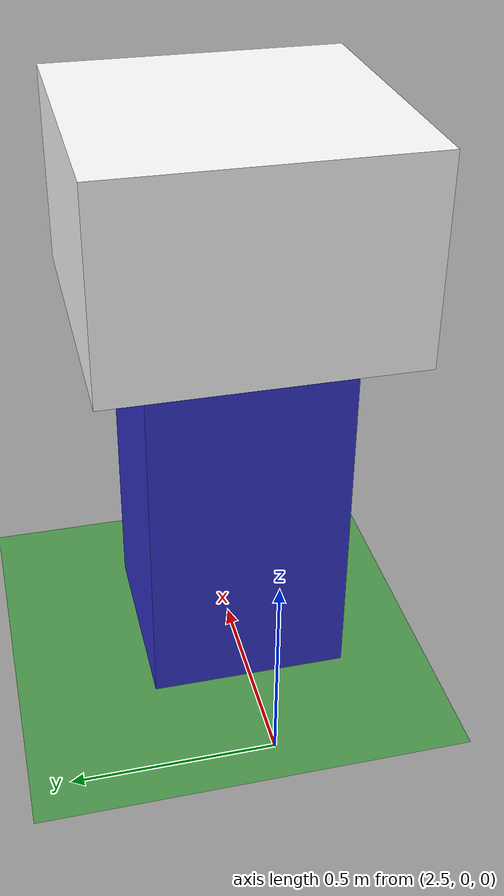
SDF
<?xml version="1.0" ?>
<sdf version="1.9">
  <world name="face_tracking_world">

    <physics name="default_physics" type="ode">
      <max_step_size>0.004</max_step_size>
      <real_time_factor>1</real_time_factor>
      <real_time_update_rate>250</real_time_update_rate>
    </physics>

    <plugin filename="gz-sim-physics-system"
            name="gz::sim::systems::Physics"/>
    <plugin filename="gz-sim-user-commands-system"
            name="gz::sim::systems::UserCommands"/>
    <plugin filename="gz-sim-scene-broadcaster-system"
            name="gz::sim::systems::SceneBroadcaster"/>
    <plugin filename="gz-sim-sensors-system"
            name="gz::sim::systems::Sensors">
      <render_engine>ogre2</render_engine>
    </plugin>
    <plugin filename="gz-sim-imu-system"
            name="gz::sim::systems::Imu"/>

    <gravity>0 0 -9.8066</gravity>
    <magnetic_field>6.0e-6 2.3e-5 -4.2e-5</magnetic_field>

    <scene>
      <ambient>0.4 0.4 0.4 1</ambient>
      <background>0.7 0.7 0.7 1</background>
      <sky/>
    </scene>

    <light name="sun" type="directional">
      <cast_shadows>true</cast_shadows>
      <pose>0 0 100 0 0 0</pose>
      <diffuse>0.8 0.8 0.8 1</diffuse>
      <specular>0.2 0.2 0.2 1</specular>
      <direction>-0.5 0.1 -0.9</direction>
    </light>

    <model name="ground_plane">
      <static>true</static>
      <link name="link">
        <collision name="collision">
          <geometry><plane><normal>0 0 1</normal><size>500 500</size></plane></geometry>
        </collision>
        <visual name="visual">
          <geometry><plane><normal>0 0 1</normal><size>500 500</size></plane></geometry>
          <material>
            <ambient>0.3 0.5 0.3 1</ambient>
            <diffuse>0.3 0.6 0.3 1</diffuse>
            <specular>0.1 0.1 0.1 1</specular>
          </material>
        </visual>
      </link>
    </model>

    <!-- Simple person-shaped target with face -->
    <model name="face_target">
      <static>true</static>
      <pose>3 0 0 0 0 3.14159</pose>
      <link name="body">
        <visual name="torso">
          <pose>0 0 0.5 0 0 0</pose>
          <geometry><box><size>0.5 0.5 1.0</size></box></geometry>
          <material>
            <ambient>0.2 0.2 0.6 1</ambient>
            <diffuse>0.2 0.2 0.8 1</diffuse>
          </material>
        </visual>
        <visual name="head">
          <pose>0 0 1.2 0 0 0</pose>
          <geometry><box><size>0.75 0.75 0.5</size></box></geometry>
          <material>
            <ambient>1 1 1 1</ambient>
            <diffuse>1 1 1 1</diffuse>
            <specular>0.1 0.1 0.1 1</specular>
            <emissive>0.0 0.0 0.0 1</emissive>
            <pbr>
              <metal>
                <albedo_map>file:///home/rmellen/ros2_ws/src/drone_face_tracking/worlds/stock_face.jpg</albedo_map>
                <metalness>0.0</metalness>
              </metal>
            </pbr>
          </material>
        </visual>
        <collision name="collision">
          <pose>0 0 0.85 0 0 0</pose>
          <geometry><box><size>0.5 0.3 1.7</size></box></geometry>
        </collision>
      </link>
    </model>

  </world>
</sdf>
